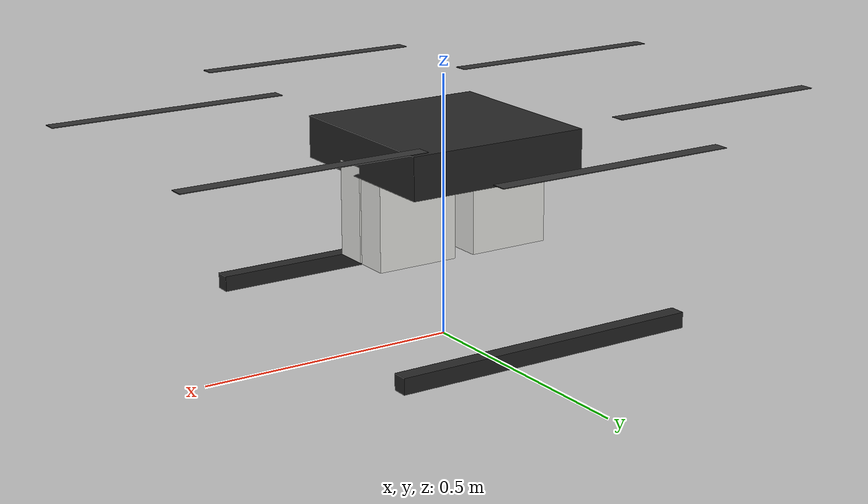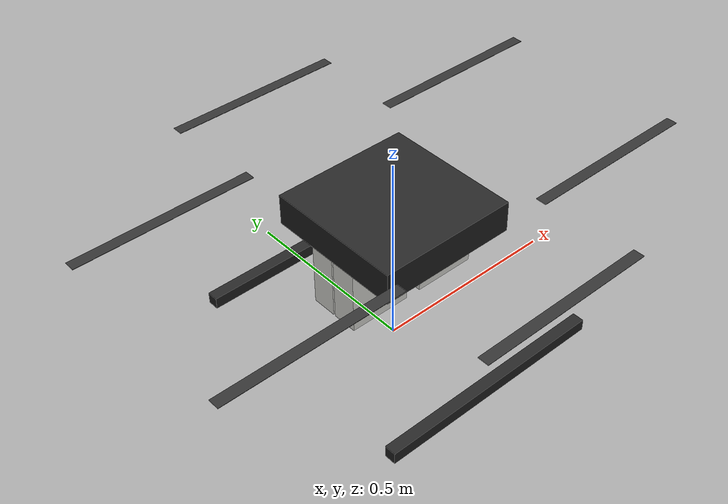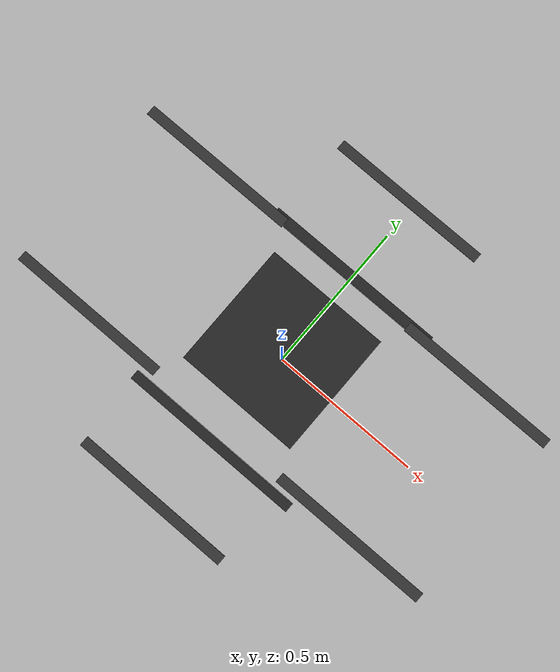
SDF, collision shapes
<?xml version='1.0' encoding='UTF-8'?>
<sdf version='1.9'>
  <model name='eft_x6100'>
    <include merge='true'>
      <uri>eft_x6100_base</uri>
    </include>

    <plugin filename="gz-sim-multicopter-motor-model-system" name="gz::sim::systems::MulticopterMotorModel">
      <jointName>rotor_0_joint</jointName>
      <linkName>rotor_0</linkName>
      <turningDirection>cw</turningDirection>
      <timeConstantUp>0.02</timeConstantUp>
      <timeConstantDown>0.04</timeConstantDown>
      <maxRotVelocity>1000.0</maxRotVelocity>
      <motorConstant>3.765e-05</motorConstant>
      <momentConstant>0.02</momentConstant>
      <commandSubTopic>command/motor_speed</commandSubTopic>
      <motorNumber>0</motorNumber>
      <rotorDragCoefficient>1.75e-04</rotorDragCoefficient>
      <rollingMomentCoefficient>1e-06</rollingMomentCoefficient>
      <rotorVelocitySlowdownSim>10</rotorVelocitySlowdownSim>
      <motorType>velocity</motorType>
    </plugin>
    <plugin filename="gz-sim-multicopter-motor-model-system" name="gz::sim::systems::MulticopterMotorModel">
      <jointName>rotor_1_joint</jointName>
      <linkName>rotor_1</linkName>
      <turningDirection>ccw</turningDirection>
      <timeConstantUp>0.02</timeConstantUp>
      <timeConstantDown>0.04</timeConstantDown>
      <maxRotVelocity>1000.0</maxRotVelocity>
      <motorConstant>3.765e-05</motorConstant>
      <momentConstant>0.02</momentConstant>
      <commandSubTopic>command/motor_speed</commandSubTopic>
      <motorNumber>1</motorNumber>
      <rotorDragCoefficient>1.75e-04</rotorDragCoefficient>
      <rollingMomentCoefficient>1e-06</rollingMomentCoefficient>
      <rotorVelocitySlowdownSim>10</rotorVelocitySlowdownSim>
      <motorType>velocity</motorType>
    </plugin>
    <plugin filename="gz-sim-multicopter-motor-model-system" name="gz::sim::systems::MulticopterMotorModel">
      <jointName>rotor_2_joint</jointName>
      <linkName>rotor_2</linkName>
      <turningDirection>cw</turningDirection>
      <timeConstantUp>0.02</timeConstantUp>
      <timeConstantDown>0.04</timeConstantDown>
      <maxRotVelocity>1000.0</maxRotVelocity>
      <motorConstant>3.765e-05</motorConstant>
      <momentConstant>0.02</momentConstant>
      <commandSubTopic>command/motor_speed</commandSubTopic>
      <motorNumber>2</motorNumber>
      <rotorDragCoefficient>1.75e-04</rotorDragCoefficient>
      <rollingMomentCoefficient>1e-06</rollingMomentCoefficient>
      <rotorVelocitySlowdownSim>10</rotorVelocitySlowdownSim>
      <motorType>velocity</motorType>
    </plugin>
    <plugin filename="gz-sim-multicopter-motor-model-system" name="gz::sim::systems::MulticopterMotorModel">
      <jointName>rotor_3_joint</jointName>
      <linkName>rotor_3</linkName>
      <turningDirection>ccw</turningDirection>
      <timeConstantUp>0.02</timeConstantUp>
      <timeConstantDown>0.04</timeConstantDown>
      <maxRotVelocity>1000.0</maxRotVelocity>
      <motorConstant>3.765e-05</motorConstant>
      <momentConstant>0.02</momentConstant>
      <commandSubTopic>command/motor_speed</commandSubTopic>
      <motorNumber>3</motorNumber>
      <rotorDragCoefficient>1.75e-04</rotorDragCoefficient>
      <rollingMomentCoefficient>1e-06</rollingMomentCoefficient>
      <rotorVelocitySlowdownSim>10</rotorVelocitySlowdownSim>
      <motorType>velocity</motorType>
    </plugin>
    <plugin filename="gz-sim-multicopter-motor-model-system" name="gz::sim::systems::MulticopterMotorModel">
      <jointName>rotor_4_joint</jointName>
      <linkName>rotor_4</linkName>
      <turningDirection>ccw</turningDirection>
      <timeConstantUp>0.02</timeConstantUp>
      <timeConstantDown>0.04</timeConstantDown>
      <maxRotVelocity>1000.0</maxRotVelocity>
      <motorConstant>3.765e-05</motorConstant>
      <momentConstant>0.02</momentConstant>
      <commandSubTopic>command/motor_speed</commandSubTopic>
      <motorNumber>4</motorNumber>
      <rotorDragCoefficient>1.75e-04</rotorDragCoefficient>
      <rollingMomentCoefficient>1e-06</rollingMomentCoefficient>
      <rotorVelocitySlowdownSim>10</rotorVelocitySlowdownSim>
      <motorType>velocity</motorType>
    </plugin>
    <plugin filename="gz-sim-multicopter-motor-model-system" name="gz::sim::systems::MulticopterMotorModel">
      <jointName>rotor_5_joint</jointName>
      <linkName>rotor_5</linkName>
      <turningDirection>cw</turningDirection>
      <timeConstantUp>0.02</timeConstantUp>
      <timeConstantDown>0.04</timeConstantDown>
      <maxRotVelocity>1000.0</maxRotVelocity>
      <motorConstant>3.765e-05</motorConstant>
      <momentConstant>0.02</momentConstant>
      <commandSubTopic>command/motor_speed</commandSubTopic>
      <motorNumber>5</motorNumber>
      <rotorDragCoefficient>1.75e-04</rotorDragCoefficient>
      <rollingMomentCoefficient>1e-06</rollingMomentCoefficient>
      <rotorVelocitySlowdownSim>10</rotorVelocitySlowdownSim>
      <motorType>velocity</motorType>
    </plugin>

    <link name="camera_link">
      <pose>0 0 0.10 0 1.5708 3.14159</pose>
      <inertial>
        <pose>0 0 0 0 0 0</pose>
        <mass>0.050</mass>
        <inertia>
          <ixx>0.00004</ixx>
          <ixy>0</ixy>
          <ixz>0</ixz>
          <iyy>0.00004</iyy>
          <iyz>0</iyz>
          <izz>0.00004</izz>
        </inertia>
      </inertial>
      <sensor name="imager" type="camera">
        <pose>0 0 0 0 0 0</pose>
        <camera>
          <horizontal_fov>1.295</horizontal_fov>
          <image>
            <width>1280</width>
            <height>720</height>
          </image>
          <clip>
            <near>0.02</near>
            <far>3000</far>
          </clip>
        </camera>
        <always_on>1</always_on>
        <update_rate>15</update_rate>
        <visualize>true</visualize>
        <topic>camera</topic>
      </sensor>
      <gravity>true</gravity>
      <velocity_decay/>
    </link>
    <joint name="CameraJoint" type="fixed">
      <parent>base_link</parent>
      <child>camera_link</child>
    </joint>

    <include>
      <name>cargo_payload_0</name>
      <uri>model://cargo_payload</uri>
      <pose>-0.10 -0.035 0.26 0 0 0</pose>
    </include>
    <include>
      <name>cargo_payload_1</name>
      <uri>model://cargo_payload</uri>
      <pose>0.10 -0.035 0.26 0 0 0</pose>
    </include>
    <include>
      <name>cargo_payload_2</name>
      <uri>model://cargo_payload</uri>
      <pose>-0.10 0.035 0.26 0 0 0</pose>
    </include>
    <include>
      <name>cargo_payload_3</name>
      <uri>model://cargo_payload</uri>
      <pose>0.10 0.035 0.26 0 0 0</pose>
    </include>
    <plugin filename="gz-sim-detachable-joint-system"
            name="gz::sim::systems::DetachableJoint">
      <parent_link>base_link</parent_link>
      <child_model>cargo_payload_0</child_model>
      <child_link>payload</child_link>
      <detach_topic>/model/eft_x6100/detach_payload_0</detach_topic>
    </plugin>
    <plugin filename="gz-sim-detachable-joint-system"
            name="gz::sim::systems::DetachableJoint">
      <parent_link>base_link</parent_link>
      <child_model>cargo_payload_1</child_model>
      <child_link>payload</child_link>
      <detach_topic>/model/eft_x6100/detach_payload_1</detach_topic>
    </plugin>
    <plugin filename="gz-sim-detachable-joint-system"
            name="gz::sim::systems::DetachableJoint">
      <parent_link>base_link</parent_link>
      <child_model>cargo_payload_2</child_model>
      <child_link>payload</child_link>
      <detach_topic>/model/eft_x6100/detach_payload_2</detach_topic>
    </plugin>
    <plugin filename="gz-sim-detachable-joint-system"
            name="gz::sim::systems::DetachableJoint">
      <parent_link>base_link</parent_link>
      <child_model>cargo_payload_3</child_model>
      <child_link>payload</child_link>
      <detach_topic>/model/eft_x6100/detach_payload_3</detach_topic>
    </plugin>
  </model>
</sdf>
